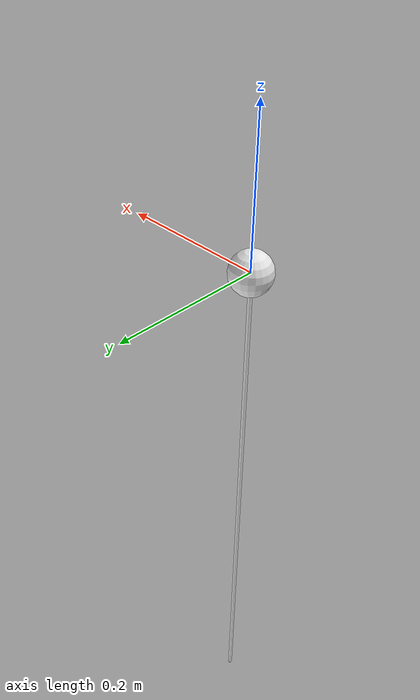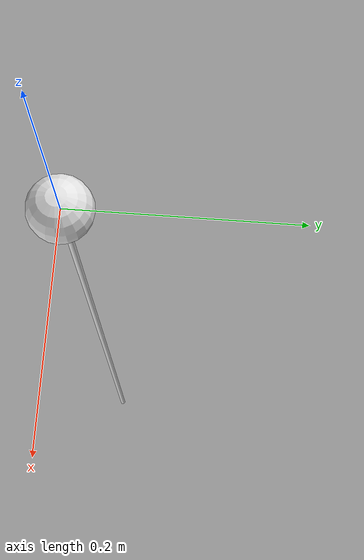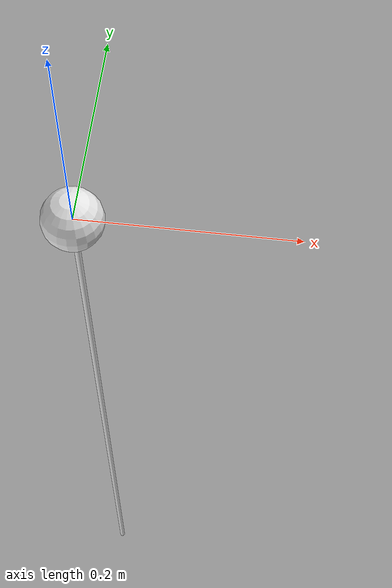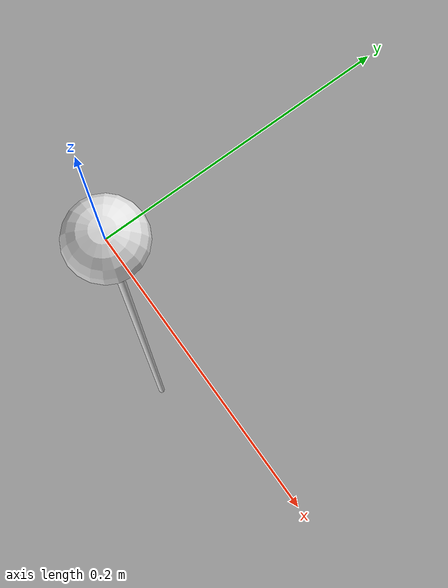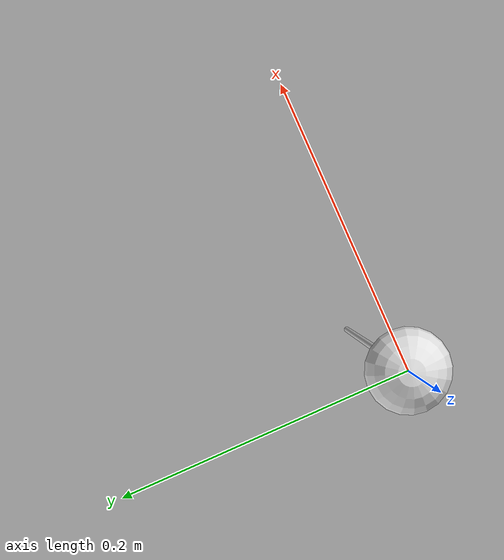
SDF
<?xml version="1.0"?>
<sdf version="1.7">

  <!-- Note:
       This file defines the model for a pole with the ball attached to one end.
       The ball is centered at the origin.
  -->
  <model name="pole">
    <link name="cylinder">
    <pose>0 0 -0.41 0 0 0</pose>
      <inertial>
        <mass>0.0</mass>
        <inertia>
          <ixx>0</ixx>
          <ixy>0</ixy>
          <ixz>0</ixz>
          <iyy>0</iyy>
          <iyz>0</iyz>
          <izz>0</izz>
        </inertia>
      </inertial>

      <visual name="pole_visual">
        <geometry>
          <cylinder>
            <radius>0.003</radius>
            <length>0.82</length>
          </cylinder>
        </geometry>
        <material>
          <diffuse>0.9 0.9 0.9 0.9</diffuse>
        </material>
      </visual>

      <collision name="pole_collision">
        <geometry>
          <cylinder>
            <radius>0.0003</radius>
            <length>0.82</length>
          </cylinder>
        </geometry>
        <surface>
          <friction>
            <ode>
              <mu>1.0</mu>
              <mu2>1.0</mu2>
            </ode>
          </friction>
        </surface>
      </collision>

      <collision name="bottom_corner">
        <pose> 0 0 -0.41 0 0 0</pose>
        <geometry>
          <sphere>
            <radius>0.003</radius>
          </sphere>
        </geometry>
        <surface>
            <friction>
                <ode>
                  <mu>1.0</mu>
                  <mu2>1.0</mu2>
                </ode>
              </friction>
        </surface>
      </collision>

      <visual name="bottom_collision_visual">
        <pose> 0 0 -0.41 0 0 0</pose>
        <geometry>
          <sphere>
            <radius>0.003</radius>
          </sphere>
        </geometry>
        <material>
          <diffuse>0.9 0.9 0.9 0.9</diffuse>
        </material>
      </visual>

    </link>

    <link name="ball">

      <inertial>
        <mass>0.1649</mass>
        <inertia>
          <ixx>0</ixx>
          <ixy>0</ixy>
          <ixz>0</ixz>
          <iyy>0</iyy>
          <iyz>0</iyz>
          <izz>0</izz>
        </inertia>
      </inertial>

      <visual name="ball_visual">
        <geometry>
          <sphere>
            <radius>0.0285</radius>
          </sphere>
        </geometry>
        <material>
          <diffuse>0.9 0.9 0.9 0.9</diffuse>
        </material>
      </visual>

      <collision name="ball_collision">
        <geometry>
          <sphere>
            <radius>0.0285</radius>
          </sphere>
        </geometry>
        <surface>
          <friction>
            <ode>
              <mu>1.0</mu>
              <mu2>1.0</mu2>
            </ode>
          </friction>
        </surface>
      </collision>

    </link>

    <joint name="ball_pole" type="fixed">
      <child>ball</child>
      <parent>cylinder</parent>
      <axis>
        <xyz expressed_in="__model__">0 0 0.41</xyz>
      </axis>
    </joint>
  </model>
</sdf>
